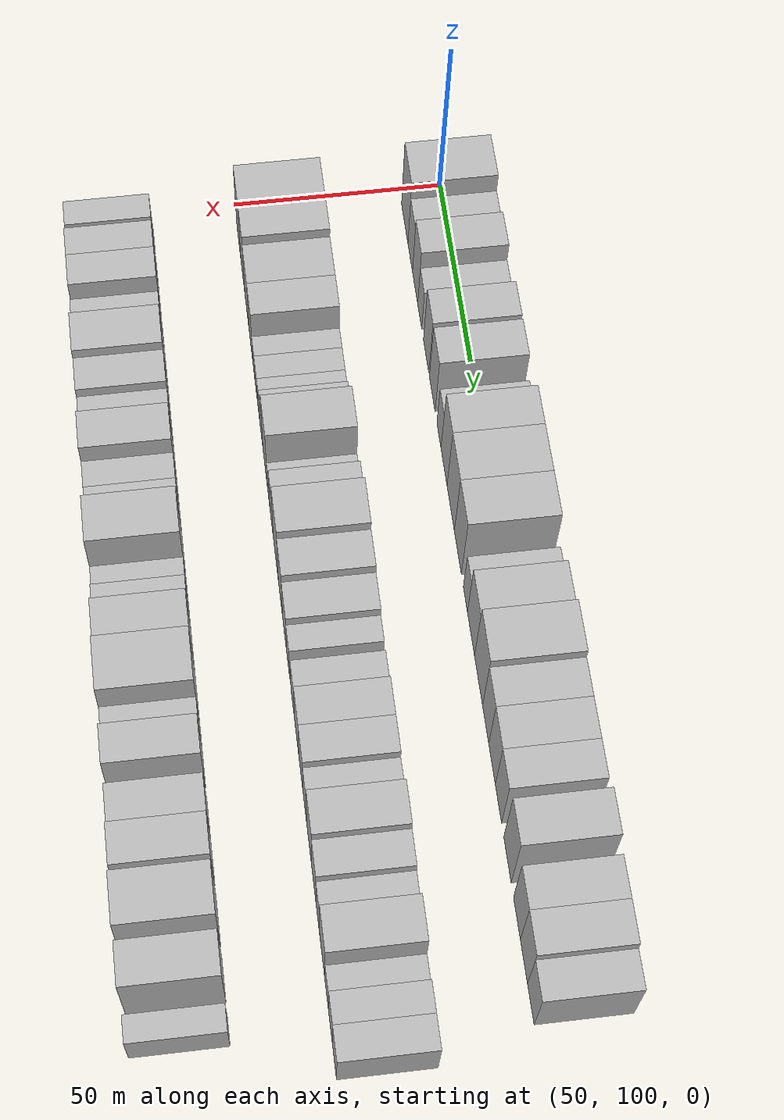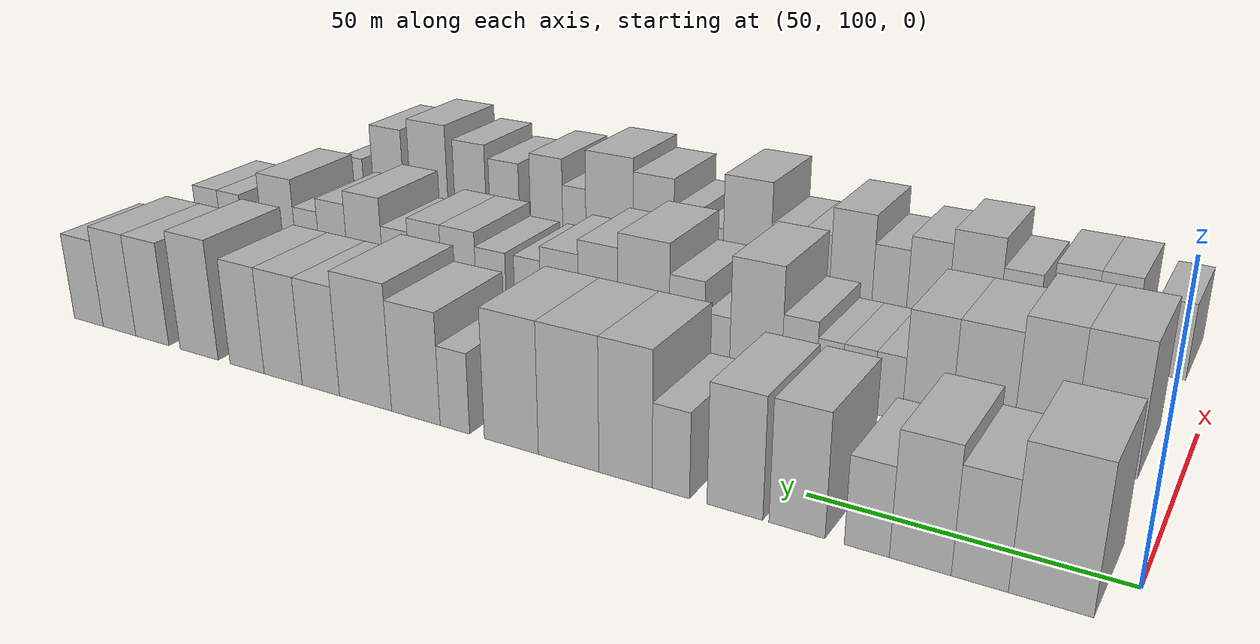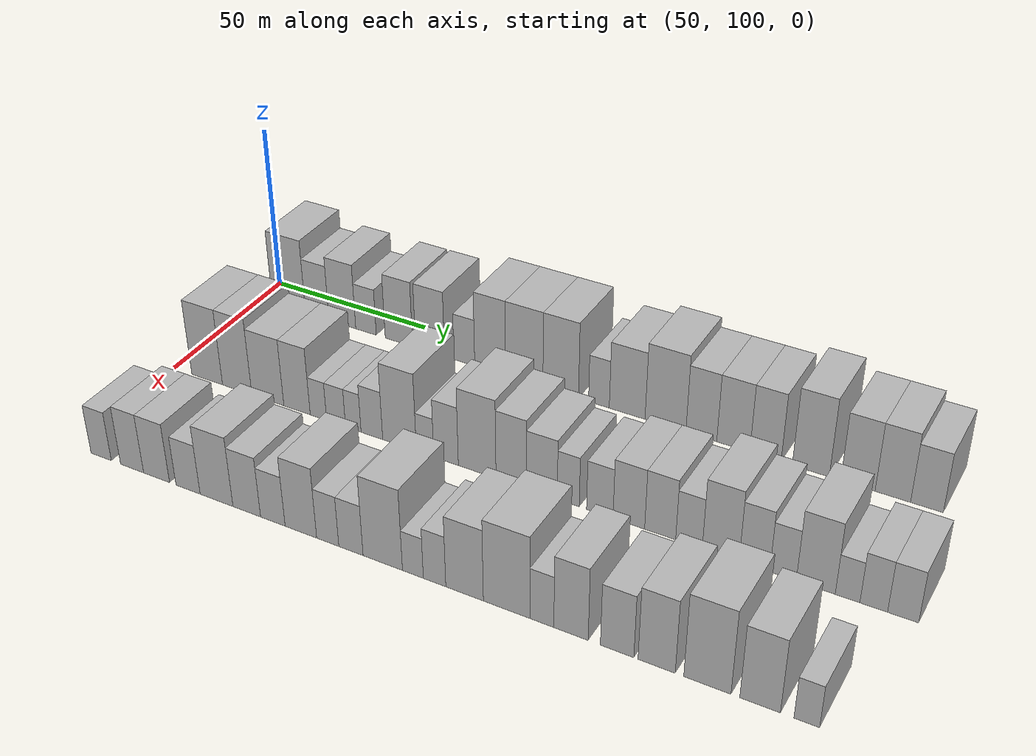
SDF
<sdf version="1.6">
 <world name="default">
  <model name="building_80">
   <static>1</static>
   <pose>50.0000 110.0770 0 0.000000 0.000000 0.000000</pose>
   <link name="link">
    <pose>0 0 12.00 0 0 0</pose>
    <collision name="collision"><geometry><box><size>20.0000 11.5958 24.0000</size></box></geometry></collision>
    <visual name="visual">
     <cast_shadows>0</cast_shadows>
     <geometry><box><size>20.0000 11.5958 24.0000</size></box></geometry>
     <material>
      <script>
       <uri>model://HANNAS_wall/materials/scripts</uri>
       <uri>model://HANNAS_wall/materials/textures</uri>
       <name>vrc/HANNAS_wall</name>
      </script>
     </material>
    </visual>
   </link>
  </model>
  <model name="building_81">
   <static>1</static>
   <pose>50.0000 119.9259 0 0.000000 0.000000 0.000000</pose>
   <link name="link">
    <pose>0 0 9.00 0 0 0</pose>
    <collision name="collision"><geometry><box><size>20.0000 8.1019 18.0000</size></box></geometry></collision>
    <visual name="visual">
     <cast_shadows>0</cast_shadows>
     <geometry><box><size>20.0000 8.1019 18.0000</size></box></geometry>
     <material>
      <script>
       <uri>model://HANNAS_wall/materials/scripts</uri>
       <uri>model://HANNAS_wall/materials/textures</uri>
       <name>vrc/HANNAS_wall</name>
      </script>
     </material>
    </visual>
   </link>
  </model>
  <model name="building_82">
   <static>1</static>
   <pose>50.0000 128.5362 0 0.000000 0.000000 0.000000</pose>
   <link name="link">
    <pose>0 0 10.50 0 0 0</pose>
    <collision name="collision"><geometry><box><size>20.0000 9.1188 21.0000</size></box></geometry></collision>
    <visual name="visual">
     <cast_shadows>0</cast_shadows>
     <geometry><box><size>20.0000 9.1188 21.0000</size></box></geometry>
     <material>
      <script>
       <uri>model://HANNAS_wall/materials/scripts</uri>
       <uri>model://HANNAS_wall/materials/textures</uri>
       <name>vrc/HANNAS_wall</name>
      </script>
     </material>
    </visual>
   </link>
  </model>
  <model name="building_83">
   <static>1</static>
   <pose>50.0000 136.5406 0 0.000000 0.000000 0.000000</pose>
   <link name="link">
    <pose>0 0 7.50 0 0 0</pose>
    <collision name="collision"><geometry><box><size>20.0000 6.8900 15.0000</size></box></geometry></collision>
    <visual name="visual">
     <cast_shadows>0</cast_shadows>
     <geometry><box><size>20.0000 6.8900 15.0000</size></box></geometry>
     <material>
      <script>
       <uri>model://HANNAS_wall/materials/scripts</uri>
       <uri>model://HANNAS_wall/materials/textures</uri>
       <name>vrc/HANNAS_wall</name>
      </script>
     </material>
    </visual>
   </link>
  </model>
  <model name="building_84">
   <static>1</static>
   <pose>50.0000 147.4978 0 0.000000 0.000000 0.000000</pose>
   <link name="link">
    <pose>0 0 10.50 0 0 0</pose>
    <collision name="collision"><geometry><box><size>20.0000 9.0243 21.0000</size></box></geometry></collision>
    <visual name="visual">
     <cast_shadows>0</cast_shadows>
     <geometry><box><size>20.0000 9.0243 21.0000</size></box></geometry>
     <material>
      <script>
       <uri>model://HANNAS_wall/materials/scripts</uri>
       <uri>model://HANNAS_wall/materials/textures</uri>
       <name>vrc/HANNAS_wall</name>
      </script>
     </material>
    </visual>
   </link>
  </model>
  <model name="building_85">
   <static>1</static>
   <pose>50.0000 157.6955 0 0.000000 0.000000 0.000000</pose>
   <link name="link">
    <pose>0 0 10.50 0 0 0</pose>
    <collision name="collision"><geometry><box><size>20.0000 9.3711 21.0000</size></box></geometry></collision>
    <visual name="visual">
     <cast_shadows>0</cast_shadows>
     <geometry><box><size>20.0000 9.3711 21.0000</size></box></geometry>
     <material>
      <script>
       <uri>model://HANNAS_wall/materials/scripts</uri>
       <uri>model://HANNAS_wall/materials/textures</uri>
       <name>vrc/HANNAS_wall</name>
      </script>
     </material>
    </visual>
   </link>
  </model>
  <model name="building_86">
   <static>1</static>
   <pose>50.0000 168.6823 0 0.000000 0.000000 0.000000</pose>
   <link name="link">
    <pose>0 0 7.50 0 0 0</pose>
    <collision name="collision"><geometry><box><size>20.0000 6.6025 15.0000</size></box></geometry></collision>
    <visual name="visual">
     <cast_shadows>0</cast_shadows>
     <geometry><box><size>20.0000 6.6025 15.0000</size></box></geometry>
     <material>
      <script>
       <uri>model://HANNAS_wall/materials/scripts</uri>
       <uri>model://HANNAS_wall/materials/textures</uri>
       <name>vrc/HANNAS_wall</name>
      </script>
     </material>
    </visual>
   </link>
  </model>
  <model name="building_87">
   <static>1</static>
   <pose>50.0000 176.8110 0 0.000000 0.000000 0.000000</pose>
   <link name="link">
    <pose>0 0 12.00 0 0 0</pose>
    <collision name="collision"><geometry><box><size>20.0000 9.6549 24.0000</size></box></geometry></collision>
    <visual name="visual">
     <cast_shadows>0</cast_shadows>
     <geometry><box><size>20.0000 9.6549 24.0000</size></box></geometry>
     <material>
      <script>
       <uri>model://HANNAS_wall/materials/scripts</uri>
       <uri>model://HANNAS_wall/materials/textures</uri>
       <name>vrc/HANNAS_wall</name>
      </script>
     </material>
    </visual>
   </link>
  </model>
  <model name="building_88">
   <static>1</static>
   <pose>50.0000 187.3847 0 0.000000 0.000000 0.000000</pose>
   <link name="link">
    <pose>0 0 12.00 0 0 0</pose>
    <collision name="collision"><geometry><box><size>20.0000 11.4924 24.0000</size></box></geometry></collision>
    <visual name="visual">
     <cast_shadows>0</cast_shadows>
     <geometry><box><size>20.0000 11.4924 24.0000</size></box></geometry>
     <material>
      <script>
       <uri>model://HANNAS_wall/materials/scripts</uri>
       <uri>model://HANNAS_wall/materials/textures</uri>
       <name>vrc/HANNAS_wall</name>
      </script>
     </material>
    </visual>
   </link>
  </model>
  <model name="building_89">
   <static>1</static>
   <pose>50.0000 198.4945 0 0.000000 0.000000 0.000000</pose>
   <link name="link">
    <pose>0 0 12.00 0 0 0</pose>
    <collision name="collision"><geometry><box><size>20.0000 10.7272 24.0000</size></box></geometry></collision>
    <visual name="visual">
     <cast_shadows>0</cast_shadows>
     <geometry><box><size>20.0000 10.7272 24.0000</size></box></geometry>
     <material>
      <script>
       <uri>model://HANNAS_wall/materials/scripts</uri>
       <uri>model://HANNAS_wall/materials/textures</uri>
       <name>vrc/HANNAS_wall</name>
      </script>
     </material>
    </visual>
   </link>
  </model>
  <model name="building_90">
   <static>1</static>
   <pose>50.0000 209.9155 0 0.000000 0.000000 0.000000</pose>
   <link name="link">
    <pose>0 0 7.50 0 0 0</pose>
    <collision name="collision"><geometry><box><size>20.0000 6.1148 15.0000</size></box></geometry></collision>
    <visual name="visual">
     <cast_shadows>0</cast_shadows>
     <geometry><box><size>20.0000 6.1148 15.0000</size></box></geometry>
     <material>
      <script>
       <uri>model://HANNAS_wall/materials/scripts</uri>
       <uri>model://HANNAS_wall/materials/textures</uri>
       <name>vrc/HANNAS_wall</name>
      </script>
     </material>
    </visual>
   </link>
  </model>
  <model name="building_91">
   <static>1</static>
   <pose>50.0000 218.1866 0 0.000000 0.000000 0.000000</pose>
   <link name="link">
    <pose>0 0 10.50 0 0 0</pose>
    <collision name="collision"><geometry><box><size>20.0000 10.4274 21.0000</size></box></geometry></collision>
    <visual name="visual">
     <cast_shadows>0</cast_shadows>
     <geometry><box><size>20.0000 10.4274 21.0000</size></box></geometry>
     <material>
      <script>
       <uri>model://HANNAS_wall/materials/scripts</uri>
       <uri>model://HANNAS_wall/materials/textures</uri>
       <name>vrc/HANNAS_wall</name>
      </script>
     </material>
    </visual>
   </link>
  </model>
  <model name="building_92">
   <static>1</static>
   <pose>50.0000 229.2195 0 0.000000 0.000000 0.000000</pose>
   <link name="link">
    <pose>0 0 12.00 0 0 0</pose>
    <collision name="collision"><geometry><box><size>20.0000 11.6385 24.0000</size></box></geometry></collision>
    <visual name="visual">
     <cast_shadows>0</cast_shadows>
     <geometry><box><size>20.0000 11.6385 24.0000</size></box></geometry>
     <material>
      <script>
       <uri>model://HANNAS_wall/materials/scripts</uri>
       <uri>model://HANNAS_wall/materials/textures</uri>
       <name>vrc/HANNAS_wall</name>
      </script>
     </material>
    </visual>
   </link>
  </model>
  <model name="building_93">
   <static>1</static>
   <pose>50.0000 239.3570 0 0.000000 0.000000 0.000000</pose>
   <link name="link">
    <pose>0 0 10.50 0 0 0</pose>
    <collision name="collision"><geometry><box><size>20.0000 8.6364 21.0000</size></box></geometry></collision>
    <visual name="visual">
     <cast_shadows>0</cast_shadows>
     <geometry><box><size>20.0000 8.6364 21.0000</size></box></geometry>
     <material>
      <script>
       <uri>model://HANNAS_wall/materials/scripts</uri>
       <uri>model://HANNAS_wall/materials/textures</uri>
       <name>vrc/HANNAS_wall</name>
      </script>
     </material>
    </visual>
   </link>
  </model>
  <model name="building_94">
   <static>1</static>
   <pose>50.0000 248.2365 0 0.000000 0.000000 0.000000</pose>
   <link name="link">
    <pose>0 0 10.50 0 0 0</pose>
    <collision name="collision"><geometry><box><size>20.0000 9.1226 21.0000</size></box></geometry></collision>
    <visual name="visual">
     <cast_shadows>0</cast_shadows>
     <geometry><box><size>20.0000 9.1226 21.0000</size></box></geometry>
     <material>
      <script>
       <uri>model://HANNAS_wall/materials/scripts</uri>
       <uri>model://HANNAS_wall/materials/textures</uri>
       <name>vrc/HANNAS_wall</name>
      </script>
     </material>
    </visual>
   </link>
  </model>
  <model name="building_95">
   <static>1</static>
   <pose>50.0000 257.0243 0 0.000000 0.000000 0.000000</pose>
   <link name="link">
    <pose>0 0 10.50 0 0 0</pose>
    <collision name="collision"><geometry><box><size>20.0000 8.4530 21.0000</size></box></geometry></collision>
    <visual name="visual">
     <cast_shadows>0</cast_shadows>
     <geometry><box><size>20.0000 8.4530 21.0000</size></box></geometry>
     <material>
      <script>
       <uri>model://HANNAS_wall/materials/scripts</uri>
       <uri>model://HANNAS_wall/materials/textures</uri>
       <name>vrc/HANNAS_wall</name>
      </script>
     </material>
    </visual>
   </link>
  </model>
  <model name="building_96">
   <static>1</static>
   <pose>50.0000 269.1460 0 0.000000 0.000000 0.000000</pose>
   <link name="link">
    <pose>0 0 12.00 0 0 0</pose>
    <collision name="collision"><geometry><box><size>20.0000 9.7904 24.0000</size></box></geometry></collision>
    <visual name="visual">
     <cast_shadows>0</cast_shadows>
     <geometry><box><size>20.0000 9.7904 24.0000</size></box></geometry>
     <material>
      <script>
       <uri>model://HANNAS_wall/materials/scripts</uri>
       <uri>model://HANNAS_wall/materials/textures</uri>
       <name>vrc/HANNAS_wall</name>
      </script>
     </material>
    </visual>
   </link>
  </model>
  <model name="building_97">
   <static>1</static>
   <pose>50.0000 281.4803 0 0.000000 0.000000 0.000000</pose>
   <link name="link">
    <pose>0 0 10.50 0 0 0</pose>
    <collision name="collision"><geometry><box><size>20.0000 8.8783 21.0000</size></box></geometry></collision>
    <visual name="visual">
     <cast_shadows>0</cast_shadows>
     <geometry><box><size>20.0000 8.8783 21.0000</size></box></geometry>
     <material>
      <script>
       <uri>model://HANNAS_wall/materials/scripts</uri>
       <uri>model://HANNAS_wall/materials/textures</uri>
       <name>vrc/HANNAS_wall</name>
      </script>
     </material>
    </visual>
   </link>
  </model>
  <model name="building_98">
   <static>1</static>
   <pose>50.0000 290.4282 0 0.000000 0.000000 0.000000</pose>
   <link name="link">
    <pose>0 0 10.50 0 0 0</pose>
    <collision name="collision"><geometry><box><size>20.0000 9.0176 21.0000</size></box></geometry></collision>
    <visual name="visual">
     <cast_shadows>0</cast_shadows>
     <geometry><box><size>20.0000 9.0176 21.0000</size></box></geometry>
     <material>
      <script>
       <uri>model://HANNAS_wall/materials/scripts</uri>
       <uri>model://HANNAS_wall/materials/textures</uri>
       <name>vrc/HANNAS_wall</name>
      </script>
     </material>
    </visual>
   </link>
  </model>
  <model name="building_99">
   <static>1</static>
   <pose>50.0000 299.0356 0 0.000000 0.000000 0.000000</pose>
   <link name="link">
    <pose>0 0 9.00 0 0 0</pose>
    <collision name="collision"><geometry><box><size>20.0000 8.1972 18.0000</size></box></geometry></collision>
    <visual name="visual">
     <cast_shadows>0</cast_shadows>
     <geometry><box><size>20.0000 8.1972 18.0000</size></box></geometry>
     <material>
      <script>
       <uri>model://HANNAS_wall/materials/scripts</uri>
       <uri>model://HANNAS_wall/materials/textures</uri>
       <name>vrc/HANNAS_wall</name>
      </script>
     </material>
    </visual>
   </link>
  </model>
  <model name="building_221">
   <static>1</static>
   <pose>90.0000 111.3199 0 0.000000 0.000000 0.000000</pose>
   <link name="link">
    <pose>0 0 12.00 0 0 0</pose>
    <collision name="collision"><geometry><box><size>20.0000 10.3253 24.0000</size></box></geometry></collision>
    <visual name="visual">
     <cast_shadows>0</cast_shadows>
     <geometry><box><size>20.0000 10.3253 24.0000</size></box></geometry>
     <material>
      <script>
       <uri>model://HANNAS_wall/materials/scripts</uri>
       <uri>model://HANNAS_wall/materials/textures</uri>
       <name>vrc/HANNAS_wall</name>
      </script>
     </material>
    </visual>
   </link>
  </model>
  <model name="building_222">
   <static>1</static>
   <pose>90.0000 121.3473 0 0.000000 0.000000 0.000000</pose>
   <link name="link">
    <pose>0 0 12.00 0 0 0</pose>
    <collision name="collision"><geometry><box><size>20.0000 9.7294 24.0000</size></box></geometry></collision>
    <visual name="visual">
     <cast_shadows>0</cast_shadows>
     <geometry><box><size>20.0000 9.7294 24.0000</size></box></geometry>
     <material>
      <script>
       <uri>model://HANNAS_wall/materials/scripts</uri>
       <uri>model://HANNAS_wall/materials/textures</uri>
       <name>vrc/HANNAS_wall</name>
      </script>
     </material>
    </visual>
   </link>
  </model>
  <model name="building_223">
   <static>1</static>
   <pose>90.0000 131.4153 0 0.000000 0.000000 0.000000</pose>
   <link name="link">
    <pose>0 0 10.50 0 0 0</pose>
    <collision name="collision"><geometry><box><size>20.0000 10.4067 21.0000</size></box></geometry></collision>
    <visual name="visual">
     <cast_shadows>0</cast_shadows>
     <geometry><box><size>20.0000 10.4067 21.0000</size></box></geometry>
     <material>
      <script>
       <uri>model://HANNAS_wall/materials/scripts</uri>
       <uri>model://HANNAS_wall/materials/textures</uri>
       <name>vrc/HANNAS_wall</name>
      </script>
     </material>
    </visual>
   </link>
  </model>
  <model name="building_224">
   <static>1</static>
   <pose>90.0000 140.8408 0 0.000000 0.000000 0.000000</pose>
   <link name="link">
    <pose>0 0 10.50 0 0 0</pose>
    <collision name="collision"><geometry><box><size>20.0000 8.4443 21.0000</size></box></geometry></collision>
    <visual name="visual">
     <cast_shadows>0</cast_shadows>
     <geometry><box><size>20.0000 8.4443 21.0000</size></box></geometry>
     <material>
      <script>
       <uri>model://HANNAS_wall/materials/scripts</uri>
       <uri>model://HANNAS_wall/materials/textures</uri>
       <name>vrc/HANNAS_wall</name>
      </script>
     </material>
    </visual>
   </link>
  </model>
  <model name="building_225">
   <static>1</static>
   <pose>90.0000 147.6530 0 0.000000 0.000000 0.000000</pose>
   <link name="link">
    <pose>0 0 6.00 0 0 0</pose>
    <collision name="collision"><geometry><box><size>20.0000 5.1801 12.0000</size></box></geometry></collision>
    <visual name="visual">
     <cast_shadows>0</cast_shadows>
     <geometry><box><size>20.0000 5.1801 12.0000</size></box></geometry>
     <material>
      <script>
       <uri>model://HANNAS_wall/materials/scripts</uri>
       <uri>model://HANNAS_wall/materials/textures</uri>
       <name>vrc/HANNAS_wall</name>
      </script>
     </material>
    </visual>
   </link>
  </model>
  <model name="building_226">
   <static>1</static>
   <pose>90.0000 153.1986 0 0.000000 0.000000 0.000000</pose>
   <link name="link">
    <pose>0 0 6.00 0 0 0</pose>
    <collision name="collision"><geometry><box><size>20.0000 5.9110 12.0000</size></box></geometry></collision>
    <visual name="visual">
     <cast_shadows>0</cast_shadows>
     <geometry><box><size>20.0000 5.9110 12.0000</size></box></geometry>
     <material>
      <script>
       <uri>model://HANNAS_wall/materials/scripts</uri>
       <uri>model://HANNAS_wall/materials/textures</uri>
       <name>vrc/HANNAS_wall</name>
      </script>
     </material>
    </visual>
   </link>
  </model>
  <model name="building_227">
   <static>1</static>
   <pose>90.0000 158.5585 0 0.000000 0.000000 0.000000</pose>
   <link name="link">
    <pose>0 0 6.00 0 0 0</pose>
    <collision name="collision"><geometry><box><size>20.0000 4.8089 12.0000</size></box></geometry></collision>
    <visual name="visual">
     <cast_shadows>0</cast_shadows>
     <geometry><box><size>20.0000 4.8089 12.0000</size></box></geometry>
     <material>
      <script>
       <uri>model://HANNAS_wall/materials/scripts</uri>
       <uri>model://HANNAS_wall/materials/textures</uri>
       <name>vrc/HANNAS_wall</name>
      </script>
     </material>
    </visual>
   </link>
  </model>
  <model name="building_228">
   <static>1</static>
   <pose>90.0000 164.2786 0 0.000000 0.000000 0.000000</pose>
   <link name="link">
    <pose>0 0 7.50 0 0 0</pose>
    <collision name="collision"><geometry><box><size>20.0000 6.6313 15.0000</size></box></geometry></collision>
    <visual name="visual">
     <cast_shadows>0</cast_shadows>
     <geometry><box><size>20.0000 6.6313 15.0000</size></box></geometry>
     <material>
      <script>
       <uri>model://HANNAS_wall/materials/scripts</uri>
       <uri>model://HANNAS_wall/materials/textures</uri>
       <name>vrc/HANNAS_wall</name>
      </script>
     </material>
    </visual>
   </link>
  </model>
  <model name="building_229">
   <static>1</static>
   <pose>90.0000 172.6757 0 0.000000 0.000000 0.000000</pose>
   <link name="link">
    <pose>0 0 12.00 0 0 0</pose>
    <collision name="collision"><geometry><box><size>20.0000 10.1629 24.0000</size></box></geometry></collision>
    <visual name="visual">
     <cast_shadows>0</cast_shadows>
     <geometry><box><size>20.0000 10.1629 24.0000</size></box></geometry>
     <material>
      <script>
       <uri>model://HANNAS_wall/materials/scripts</uri>
       <uri>model://HANNAS_wall/materials/textures</uri>
       <name>vrc/HANNAS_wall</name>
      </script>
     </material>
    </visual>
   </link>
  </model>
  <model name="building_230">
   <static>1</static>
   <pose>90.0000 180.3348 0 0.000000 0.000000 0.000000</pose>
   <link name="link">
    <pose>0 0 6.00 0 0 0</pose>
    <collision name="collision"><geometry><box><size>20.0000 5.1553 12.0000</size></box></geometry></collision>
    <visual name="visual">
     <cast_shadows>0</cast_shadows>
     <geometry><box><size>20.0000 5.1553 12.0000</size></box></geometry>
     <material>
      <script>
       <uri>model://HANNAS_wall/materials/scripts</uri>
       <uri>model://HANNAS_wall/materials/textures</uri>
       <name>vrc/HANNAS_wall</name>
      </script>
     </material>
    </visual>
   </link>
  </model>
  <model name="building_231">
   <static>1</static>
   <pose>90.0000 186.5304 0 0.000000 0.000000 0.000000</pose>
   <link name="link">
    <pose>0 0 9.00 0 0 0</pose>
    <collision name="collision"><geometry><box><size>20.0000 7.2361 18.0000</size></box></geometry></collision>
    <visual name="visual">
     <cast_shadows>0</cast_shadows>
     <geometry><box><size>20.0000 7.2361 18.0000</size></box></geometry>
     <material>
      <script>
       <uri>model://HANNAS_wall/materials/scripts</uri>
       <uri>model://HANNAS_wall/materials/textures</uri>
       <name>vrc/HANNAS_wall</name>
      </script>
     </material>
    </visual>
   </link>
  </model>
  <model name="building_232">
   <static>1</static>
   <pose>90.0000 195.5879 0 0.000000 0.000000 0.000000</pose>
   <link name="link">
    <pose>0 0 12.00 0 0 0</pose>
    <collision name="collision"><geometry><box><size>20.0000 10.8789 24.0000</size></box></geometry></collision>
    <visual name="visual">
     <cast_shadows>0</cast_shadows>
     <geometry><box><size>20.0000 10.8789 24.0000</size></box></geometry>
     <material>
      <script>
       <uri>model://HANNAS_wall/materials/scripts</uri>
       <uri>model://HANNAS_wall/materials/textures</uri>
       <name>vrc/HANNAS_wall</name>
      </script>
     </material>
    </visual>
   </link>
  </model>
  <model name="building_233">
   <static>1</static>
   <pose>90.0000 205.3652 0 0.000000 0.000000 0.000000</pose>
   <link name="link">
    <pose>0 0 10.50 0 0 0</pose>
    <collision name="collision"><geometry><box><size>20.0000 8.6756 21.0000</size></box></geometry></collision>
    <visual name="visual">
     <cast_shadows>0</cast_shadows>
     <geometry><box><size>20.0000 8.6756 21.0000</size></box></geometry>
     <material>
      <script>
       <uri>model://HANNAS_wall/materials/scripts</uri>
       <uri>model://HANNAS_wall/materials/textures</uri>
       <name>vrc/HANNAS_wall</name>
      </script>
     </material>
    </visual>
   </link>
  </model>
  <model name="building_234">
   <static>1</static>
   <pose>90.0000 213.9725 0 0.000000 0.000000 0.000000</pose>
   <link name="link">
    <pose>0 0 9.00 0 0 0</pose>
    <collision name="collision"><geometry><box><size>20.0000 8.5390 18.0000</size></box></geometry></collision>
    <visual name="visual">
     <cast_shadows>0</cast_shadows>
     <geometry><box><size>20.0000 8.5390 18.0000</size></box></geometry>
     <material>
      <script>
       <uri>model://HANNAS_wall/materials/scripts</uri>
       <uri>model://HANNAS_wall/materials/textures</uri>
       <name>vrc/HANNAS_wall</name>
      </script>
     </material>
    </visual>
   </link>
  </model>
  <model name="building_235">
   <static>1</static>
   <pose>90.0000 221.2577 0 0.000000 0.000000 0.000000</pose>
   <link name="link">
    <pose>0 0 7.50 0 0 0</pose>
    <collision name="collision"><geometry><box><size>20.0000 6.0314 15.0000</size></box></geometry></collision>
    <visual name="visual">
     <cast_shadows>0</cast_shadows>
     <geometry><box><size>20.0000 6.0314 15.0000</size></box></geometry>
     <material>
      <script>
       <uri>model://HANNAS_wall/materials/scripts</uri>
       <uri>model://HANNAS_wall/materials/textures</uri>
       <name>vrc/HANNAS_wall</name>
      </script>
     </material>
    </visual>
   </link>
  </model>
  <model name="building_236">
   <static>1</static>
   <pose>90.0000 229.8461 0 0.000000 0.000000 0.000000</pose>
   <link name="link">
    <pose>0 0 7.50 0 0 0</pose>
    <collision name="collision"><geometry><box><size>20.0000 7.1454 15.0000</size></box></geometry></collision>
    <visual name="visual">
     <cast_shadows>0</cast_shadows>
     <geometry><box><size>20.0000 7.1454 15.0000</size></box></geometry>
     <material>
      <script>
       <uri>model://HANNAS_wall/materials/scripts</uri>
       <uri>model://HANNAS_wall/materials/textures</uri>
       <name>vrc/HANNAS_wall</name>
      </script>
     </material>
    </visual>
   </link>
  </model>
  <model name="building_237">
   <static>1</static>
   <pose>90.0000 237.6304 0 0.000000 0.000000 0.000000</pose>
   <link name="link">
    <pose>0 0 9.00 0 0 0</pose>
    <collision name="collision"><geometry><box><size>20.0000 8.4232 18.0000</size></box></geometry></collision>
    <visual name="visual">
     <cast_shadows>0</cast_shadows>
     <geometry><box><size>20.0000 8.4232 18.0000</size></box></geometry>
     <material>
      <script>
       <uri>model://HANNAS_wall/materials/scripts</uri>
       <uri>model://HANNAS_wall/materials/textures</uri>
       <name>vrc/HANNAS_wall</name>
      </script>
     </material>
    </visual>
   </link>
  </model>
  <model name="building_238">
   <static>1</static>
   <pose>90.0000 245.9011 0 0.000000 0.000000 0.000000</pose>
   <link name="link">
    <pose>0 0 9.00 0 0 0</pose>
    <collision name="collision"><geometry><box><size>20.0000 8.1182 18.0000</size></box></geometry></collision>
    <visual name="visual">
     <cast_shadows>0</cast_shadows>
     <geometry><box><size>20.0000 8.1182 18.0000</size></box></geometry>
     <material>
      <script>
       <uri>model://HANNAS_wall/materials/scripts</uri>
       <uri>model://HANNAS_wall/materials/textures</uri>
       <name>vrc/HANNAS_wall</name>
      </script>
     </material>
    </visual>
   </link>
  </model>
  <model name="building_239">
   <static>1</static>
   <pose>90.0000 253.3798 0 0.000000 0.000000 0.000000</pose>
   <link name="link">
    <pose>0 0 7.50 0 0 0</pose>
    <collision name="collision"><geometry><box><size>20.0000 6.8392 15.0000</size></box></geometry></collision>
    <visual name="visual">
     <cast_shadows>0</cast_shadows>
     <geometry><box><size>20.0000 6.8392 15.0000</size></box></geometry>
     <material>
      <script>
       <uri>model://HANNAS_wall/materials/scripts</uri>
       <uri>model://HANNAS_wall/materials/textures</uri>
       <name>vrc/HANNAS_wall</name>
      </script>
     </material>
    </visual>
   </link>
  </model>
  <model name="building_240">
   <static>1</static>
   <pose>90.0000 261.4753 0 0.000000 0.000000 0.000000</pose>
   <link name="link">
    <pose>0 0 10.50 0 0 0</pose>
    <collision name="collision"><geometry><box><size>20.0000 9.3518 21.0000</size></box></geometry></collision>
    <visual name="visual">
     <cast_shadows>0</cast_shadows>
     <geometry><box><size>20.0000 9.3518 21.0000</size></box></geometry>
     <material>
      <script>
       <uri>model://HANNAS_wall/materials/scripts</uri>
       <uri>model://HANNAS_wall/materials/textures</uri>
       <name>vrc/HANNAS_wall</name>
      </script>
     </material>
    </visual>
   </link>
  </model>
  <model name="building_241">
   <static>1</static>
   <pose>90.0000 269.9665 0 0.000000 0.000000 0.000000</pose>
   <link name="link">
    <pose>0 0 9.00 0 0 0</pose>
    <collision name="collision"><geometry><box><size>20.0000 7.6307 18.0000</size></box></geometry></collision>
    <visual name="visual">
     <cast_shadows>0</cast_shadows>
     <geometry><box><size>20.0000 7.6307 18.0000</size></box></geometry>
     <material>
      <script>
       <uri>model://HANNAS_wall/materials/scripts</uri>
       <uri>model://HANNAS_wall/materials/textures</uri>
       <name>vrc/HANNAS_wall</name>
      </script>
     </material>
    </visual>
   </link>
  </model>
  <model name="building_242">
   <static>1</static>
   <pose>90.0000 277.0421 0 0.000000 0.000000 0.000000</pose>
   <link name="link">
    <pose>0 0 7.50 0 0 0</pose>
    <collision name="collision"><geometry><box><size>20.0000 6.5205 15.0000</size></box></geometry></collision>
    <visual name="visual">
     <cast_shadows>0</cast_shadows>
     <geometry><box><size>20.0000 6.5205 15.0000</size></box></geometry>
     <material>
      <script>
       <uri>model://HANNAS_wall/materials/scripts</uri>
       <uri>model://HANNAS_wall/materials/textures</uri>
       <name>vrc/HANNAS_wall</name>
      </script>
     </material>
    </visual>
   </link>
  </model>
  <model name="building_243">
   <static>1</static>
   <pose>90.0000 285.0131 0 0.000000 0.000000 0.000000</pose>
   <link name="link">
    <pose>0 0 10.50 0 0 0</pose>
    <collision name="collision"><geometry><box><size>20.0000 9.4214 21.0000</size></box></geometry></collision>
    <visual name="visual">
     <cast_shadows>0</cast_shadows>
     <geometry><box><size>20.0000 9.4214 21.0000</size></box></geometry>
     <material>
      <script>
       <uri>model://HANNAS_wall/materials/scripts</uri>
       <uri>model://HANNAS_wall/materials/textures</uri>
       <name>vrc/HANNAS_wall</name>
      </script>
     </material>
    </visual>
   </link>
  </model>
  <model name="building_244">
   <static>1</static>
   <pose>90.0000 292.6523 0 0.000000 0.000000 0.000000</pose>
   <link name="link">
    <pose>0 0 6.00 0 0 0</pose>
    <collision name="collision"><geometry><box><size>20.0000 5.8571 12.0000</size></box></geometry></collision>
    <visual name="visual">
     <cast_shadows>0</cast_shadows>
     <geometry><box><size>20.0000 5.8571 12.0000</size></box></geometry>
     <material>
      <script>
       <uri>model://HANNAS_wall/materials/scripts</uri>
       <uri>model://HANNAS_wall/materials/textures</uri>
       <name>vrc/HANNAS_wall</name>
      </script>
     </material>
    </visual>
   </link>
  </model>
  <model name="building_245">
   <static>1</static>
   <pose>90.0000 298.8329 0 0.000000 0.000000 0.000000</pose>
   <link name="link">
    <pose>0 0 7.50 0 0 0</pose>
    <collision name="collision"><geometry><box><size>20.0000 6.5039 15.0000</size></box></geometry></collision>
    <visual name="visual">
     <cast_shadows>0</cast_shadows>
     <geometry><box><size>20.0000 6.5039 15.0000</size></box></geometry>
     <material>
      <script>
       <uri>model://HANNAS_wall/materials/scripts</uri>
       <uri>model://HANNAS_wall/materials/textures</uri>
       <name>vrc/HANNAS_wall</name>
      </script>
     </material>
    </visual>
   </link>
  </model>
  <model name="building_246">
   <static>1</static>
   <pose>90.0000 305.6870 0 0.000000 0.000000 0.000000</pose>
   <link name="link">
    <pose>0 0 7.50 0 0 0</pose>
    <collision name="collision"><geometry><box><size>20.0000 7.2043 15.0000</size></box></geometry></collision>
    <visual name="visual">
     <cast_shadows>0</cast_shadows>
     <geometry><box><size>20.0000 7.2043 15.0000</size></box></geometry>
     <material>
      <script>
       <uri>model://HANNAS_wall/materials/scripts</uri>
       <uri>model://HANNAS_wall/materials/textures</uri>
       <name>vrc/HANNAS_wall</name>
      </script>
     </material>
    </visual>
   </link>
  </model>
  <model name="building_357">
   <static>1</static>
   <pose>130.0000 108.5119 0 0.000000 0.000000 0.000000</pose>
   <link name="link">
    <pose>0 0 7.50 0 0 0</pose>
    <collision name="collision"><geometry><box><size>20.0000 6.5941 15.0000</size></box></geometry></collision>
    <visual name="visual">
     <cast_shadows>0</cast_shadows>
     <geometry><box><size>20.0000 6.5941 15.0000</size></box></geometry>
     <material>
      <script>
       <uri>model://HANNAS_wall/materials/scripts</uri>
       <uri>model://HANNAS_wall/materials/textures</uri>
       <name>vrc/HANNAS_wall</name>
      </script>
     </material>
    </visual>
   </link>
  </model>
  <model name="building_358">
   <static>1</static>
   <pose>130.0000 118.4953 0 0.000000 0.000000 0.000000</pose>
   <link name="link">
    <pose>0 0 9.00 0 0 0</pose>
    <collision name="collision"><geometry><box><size>20.0000 7.3727 18.0000</size></box></geometry></collision>
    <visual name="visual">
     <cast_shadows>0</cast_shadows>
     <geometry><box><size>20.0000 7.3727 18.0000</size></box></geometry>
     <material>
      <script>
       <uri>model://HANNAS_wall/materials/scripts</uri>
       <uri>model://HANNAS_wall/materials/textures</uri>
       <name>vrc/HANNAS_wall</name>
      </script>
     </material>
    </visual>
   </link>
  </model>
  <model name="building_359">
   <static>1</static>
   <pose>130.0000 126.2773 0 0.000000 0.000000 0.000000</pose>
   <link name="link">
    <pose>0 0 9.00 0 0 0</pose>
    <collision name="collision"><geometry><box><size>20.0000 8.1915 18.0000</size></box></geometry></collision>
    <visual name="visual">
     <cast_shadows>0</cast_shadows>
     <geometry><box><size>20.0000 8.1915 18.0000</size></box></geometry>
     <material>
      <script>
       <uri>model://HANNAS_wall/materials/scripts</uri>
       <uri>model://HANNAS_wall/materials/textures</uri>
       <name>vrc/HANNAS_wall</name>
      </script>
     </material>
    </visual>
   </link>
  </model>
  <model name="building_360">
   <static>1</static>
   <pose>130.0000 136.1133 0 0.000000 0.000000 0.000000</pose>
   <link name="link">
    <pose>0 0 7.50 0 0 0</pose>
    <collision name="collision"><geometry><box><size>20.0000 7.4804 15.0000</size></box></geometry></collision>
    <visual name="visual">
     <cast_shadows>0</cast_shadows>
     <geometry><box><size>20.0000 7.4804 15.0000</size></box></geometry>
     <material>
      <script>
       <uri>model://HANNAS_wall/materials/scripts</uri>
       <uri>model://HANNAS_wall/materials/textures</uri>
       <name>vrc/HANNAS_wall</name>
      </script>
     </material>
    </visual>
   </link>
  </model>
  <model name="building_361">
   <static>1</static>
   <pose>130.0000 144.8466 0 0.000000 0.000000 0.000000</pose>
   <link name="link">
    <pose>0 0 10.50 0 0 0</pose>
    <collision name="collision"><geometry><box><size>20.0000 9.9862 21.0000</size></box></geometry></collision>
    <visual name="visual">
     <cast_shadows>0</cast_shadows>
     <geometry><box><size>20.0000 9.9862 21.0000</size></box></geometry>
     <material>
      <script>
       <uri>model://HANNAS_wall/materials/scripts</uri>
       <uri>model://HANNAS_wall/materials/textures</uri>
       <name>vrc/HANNAS_wall</name>
      </script>
     </material>
    </visual>
   </link>
  </model>
  <model name="building_362">
   <static>1</static>
   <pose>130.0000 153.9730 0 0.000000 0.000000 0.000000</pose>
   <link name="link">
    <pose>0 0 9.00 0 0 0</pose>
    <collision name="collision"><geometry><box><size>20.0000 8.2668 18.0000</size></box></geometry></collision>
    <visual name="visual">
     <cast_shadows>0</cast_shadows>
     <geometry><box><size>20.0000 8.2668 18.0000</size></box></geometry>
     <material>
      <script>
       <uri>model://HANNAS_wall/materials/scripts</uri>
       <uri>model://HANNAS_wall/materials/textures</uri>
       <name>vrc/HANNAS_wall</name>
      </script>
     </material>
    </visual>
   </link>
  </model>
  <model name="building_363">
   <static>1</static>
   <pose>130.0000 161.7155 0 0.000000 0.000000 0.000000</pose>
   <link name="link">
    <pose>0 0 7.50 0 0 0</pose>
    <collision name="collision"><geometry><box><size>20.0000 7.2181 15.0000</size></box></geometry></collision>
    <visual name="visual">
     <cast_shadows>0</cast_shadows>
     <geometry><box><size>20.0000 7.2181 15.0000</size></box></geometry>
     <material>
      <script>
       <uri>model://HANNAS_wall/materials/scripts</uri>
       <uri>model://HANNAS_wall/materials/textures</uri>
       <name>vrc/HANNAS_wall</name>
      </script>
     </material>
    </visual>
   </link>
  </model>
  <model name="building_364">
   <static>1</static>
   <pose>130.0000 169.8887 0 0.000000 0.000000 0.000000</pose>
   <link name="link">
    <pose>0 0 10.50 0 0 0</pose>
    <collision name="collision"><geometry><box><size>20.0000 9.1284 21.0000</size></box></geometry></collision>
    <visual name="visual">
     <cast_shadows>0</cast_shadows>
     <geometry><box><size>20.0000 9.1284 21.0000</size></box></geometry>
     <material>
      <script>
       <uri>model://HANNAS_wall/materials/scripts</uri>
       <uri>model://HANNAS_wall/materials/textures</uri>
       <name>vrc/HANNAS_wall</name>
      </script>
     </material>
    </visual>
   </link>
  </model>
  <model name="building_365">
   <static>1</static>
   <pose>130.0000 177.6103 0 0.000000 0.000000 0.000000</pose>
   <link name="link">
    <pose>0 0 7.50 0 0 0</pose>
    <collision name="collision"><geometry><box><size>20.0000 6.3147 15.0000</size></box></geometry></collision>
    <visual name="visual">
     <cast_shadows>0</cast_shadows>
     <geometry><box><size>20.0000 6.3147 15.0000</size></box></geometry>
     <material>
      <script>
       <uri>model://HANNAS_wall/materials/scripts</uri>
       <uri>model://HANNAS_wall/materials/textures</uri>
       <name>vrc/HANNAS_wall</name>
      </script>
     </material>
    </visual>
   </link>
  </model>
  <model name="building_366">
   <static>1</static>
   <pose>130.0000 184.1811 0 0.000000 0.000000 0.000000</pose>
   <link name="link">
    <pose>0 0 7.50 0 0 0</pose>
    <collision name="collision"><geometry><box><size>20.0000 6.8270 15.0000</size></box></geometry></collision>
    <visual name="visual">
     <cast_shadows>0</cast_shadows>
     <geometry><box><size>20.0000 6.8270 15.0000</size></box></geometry>
     <material>
      <script>
       <uri>model://HANNAS_wall/materials/scripts</uri>
       <uri>model://HANNAS_wall/materials/textures</uri>
       <name>vrc/HANNAS_wall</name>
      </script>
     </material>
    </visual>
   </link>
  </model>
  <model name="building_367">
   <static>1</static>
   <pose>130.0000 193.0386 0 0.000000 0.000000 0.000000</pose>
   <link name="link">
    <pose>0 0 12.00 0 0 0</pose>
    <collision name="collision"><geometry><box><size>20.0000 10.8879 24.0000</size></box></geometry></collision>
    <visual name="visual">
     <cast_shadows>0</cast_shadows>
     <geometry><box><size>20.0000 10.8879 24.0000</size></box></geometry>
     <material>
      <script>
       <uri>model://HANNAS_wall/materials/scripts</uri>
       <uri>model://HANNAS_wall/materials/textures</uri>
       <name>vrc/HANNAS_wall</name>
      </script>
     </material>
    </visual>
   </link>
  </model>
  <model name="building_368">
   <static>1</static>
   <pose>130.0000 201.3104 0 0.000000 0.000000 0.000000</pose>
   <link name="link">
    <pose>0 0 6.00 0 0 0</pose>
    <collision name="collision"><geometry><box><size>20.0000 5.6557 12.0000</size></box></geometry></collision>
    <visual name="visual">
     <cast_shadows>0</cast_shadows>
     <geometry><box><size>20.0000 5.6557 12.0000</size></box></geometry>
     <material>
      <script>
       <uri>model://HANNAS_wall/materials/scripts</uri>
       <uri>model://HANNAS_wall/materials/textures</uri>
       <name>vrc/HANNAS_wall</name>
      </script>
     </material>
    </visual>
   </link>
  </model>
  <model name="building_369">
   <static>1</static>
   <pose>130.0000 207.1561 0 0.000000 0.000000 0.000000</pose>
   <link name="link">
    <pose>0 0 7.50 0 0 0</pose>
    <collision name="collision"><geometry><box><size>20.0000 6.0357 15.0000</size></box></geometry></collision>
    <visual name="visual">
     <cast_shadows>0</cast_shadows>
     <geometry><box><size>20.0000 6.0357 15.0000</size></box></geometry>
     <material>
      <script>
       <uri>model://HANNAS_wall/materials/scripts</uri>
       <uri>model://HANNAS_wall/materials/textures</uri>
       <name>vrc/HANNAS_wall</name>
      </script>
     </material>
    </visual>
   </link>
  </model>
  <model name="building_370">
   <static>1</static>
   <pose>130.0000 215.1298 0 0.000000 0.000000 0.000000</pose>
   <link name="link">
    <pose>0 0 10.50 0 0 0</pose>
    <collision name="collision"><geometry><box><size>20.0000 9.9116 21.0000</size></box></geometry></collision>
    <visual name="visual">
     <cast_shadows>0</cast_shadows>
     <geometry><box><size>20.0000 9.9116 21.0000</size></box></geometry>
     <material>
      <script>
       <uri>model://HANNAS_wall/materials/scripts</uri>
       <uri>model://HANNAS_wall/materials/textures</uri>
       <name>vrc/HANNAS_wall</name>
      </script>
     </material>
    </visual>
   </link>
  </model>
  <model name="building_371">
   <static>1</static>
   <pose>130.0000 226.0778 0 0.000000 0.000000 0.000000</pose>
   <link name="link">
    <pose>0 0 12.00 0 0 0</pose>
    <collision name="collision"><geometry><box><size>20.0000 11.9844 24.0000</size></box></geometry></collision>
    <visual name="visual">
     <cast_shadows>0</cast_shadows>
     <geometry><box><size>20.0000 11.9844 24.0000</size></box></geometry>
     <material>
      <script>
       <uri>model://HANNAS_wall/materials/scripts</uri>
       <uri>model://HANNAS_wall/materials/textures</uri>
       <name>vrc/HANNAS_wall</name>
      </script>
     </material>
    </visual>
   </link>
  </model>
  <model name="building_372">
   <static>1</static>
   <pose>130.0000 235.0966 0 0.000000 0.000000 0.000000</pose>
   <link name="link">
    <pose>0 0 7.50 0 0 0</pose>
    <collision name="collision"><geometry><box><size>20.0000 6.0532 15.0000</size></box></geometry></collision>
    <visual name="visual">
     <cast_shadows>0</cast_shadows>
     <geometry><box><size>20.0000 6.0532 15.0000</size></box></geometry>
     <material>
      <script>
       <uri>model://HANNAS_wall/materials/scripts</uri>
       <uri>model://HANNAS_wall/materials/textures</uri>
       <name>vrc/HANNAS_wall</name>
      </script>
     </material>
    </visual>
   </link>
  </model>
  <model name="building_373">
   <static>1</static>
   <pose>130.0000 242.4002 0 0.000000 0.000000 0.000000</pose>
   <link name="link">
    <pose>0 0 10.50 0 0 0</pose>
    <collision name="collision"><geometry><box><size>20.0000 8.5541 21.0000</size></box></geometry></collision>
    <visual name="visual">
     <cast_shadows>0</cast_shadows>
     <geometry><box><size>20.0000 8.5541 21.0000</size></box></geometry>
     <material>
      <script>
       <uri>model://HANNAS_wall/materials/scripts</uri>
       <uri>model://HANNAS_wall/materials/textures</uri>
       <name>vrc/HANNAS_wall</name>
      </script>
     </material>
    </visual>
   </link>
  </model>
  <model name="building_374">
   <static>1</static>
   <pose>130.0000 253.7446 0 0.000000 0.000000 0.000000</pose>
   <link name="link">
    <pose>0 0 9.00 0 0 0</pose>
    <collision name="collision"><geometry><box><size>20.0000 8.1347 18.0000</size></box></geometry></collision>
    <visual name="visual">
     <cast_shadows>0</cast_shadows>
     <geometry><box><size>20.0000 8.1347 18.0000</size></box></geometry>
     <material>
      <script>
       <uri>model://HANNAS_wall/materials/scripts</uri>
       <uri>model://HANNAS_wall/materials/textures</uri>
       <name>vrc/HANNAS_wall</name>
      </script>
     </material>
    </visual>
   </link>
  </model>
  <model name="building_375">
   <static>1</static>
   <pose>130.0000 263.2402 0 0.000000 0.000000 0.000000</pose>
   <link name="link">
    <pose>0 0 10.50 0 0 0</pose>
    <collision name="collision"><geometry><box><size>20.0000 8.8566 21.0000</size></box></geometry></collision>
    <visual name="visual">
     <cast_shadows>0</cast_shadows>
     <geometry><box><size>20.0000 8.8566 21.0000</size></box></geometry>
     <material>
      <script>
       <uri>model://HANNAS_wall/materials/scripts</uri>
       <uri>model://HANNAS_wall/materials/textures</uri>
       <name>vrc/HANNAS_wall</name>
      </script>
     </material>
    </visual>
   </link>
  </model>
  <model name="building_376">
   <static>1</static>
   <pose>130.0000 275.1409 0 0.000000 0.000000 0.000000</pose>
   <link name="link">
    <pose>0 0 12.00 0 0 0</pose>
    <collision name="collision"><geometry><box><size>20.0000 10.9447 24.0000</size></box></geometry></collision>
    <visual name="visual">
     <cast_shadows>0</cast_shadows>
     <geometry><box><size>20.0000 10.9447 24.0000</size></box></geometry>
     <material>
      <script>
       <uri>model://HANNAS_wall/materials/scripts</uri>
       <uri>model://HANNAS_wall/materials/textures</uri>
       <name>vrc/HANNAS_wall</name>
      </script>
     </material>
    </visual>
   </link>
  </model>
  <model name="building_377">
   <static>1</static>
   <pose>130.0000 287.1975 0 0.000000 0.000000 0.000000</pose>
   <link name="link">
    <pose>0 0 10.50 0 0 0</pose>
    <collision name="collision"><geometry><box><size>20.0000 9.1685 21.0000</size></box></geometry></collision>
    <visual name="visual">
     <cast_shadows>0</cast_shadows>
     <geometry><box><size>20.0000 9.1685 21.0000</size></box></geometry>
     <material>
      <script>
       <uri>model://HANNAS_wall/materials/scripts</uri>
       <uri>model://HANNAS_wall/materials/textures</uri>
       <name>vrc/HANNAS_wall</name>
      </script>
     </material>
    </visual>
   </link>
  </model>
  <model name="building_378">
   <static>1</static>
   <pose>130.0000 297.6153 0 0.000000 0.000000 0.000000</pose>
   <link name="link">
    <pose>0 0 6.00 0 0 0</pose>
    <collision name="collision"><geometry><box><size>20.0000 5.6670 12.0000</size></box></geometry></collision>
    <visual name="visual">
     <cast_shadows>0</cast_shadows>
     <geometry><box><size>20.0000 5.6670 12.0000</size></box></geometry>
     <material>
      <script>
       <uri>model://HANNAS_wall/materials/scripts</uri>
       <uri>model://HANNAS_wall/materials/textures</uri>
       <name>vrc/HANNAS_wall</name>
      </script>
     </material>
    </visual>
   </link>
  </model>
 </world>
</sdf>
